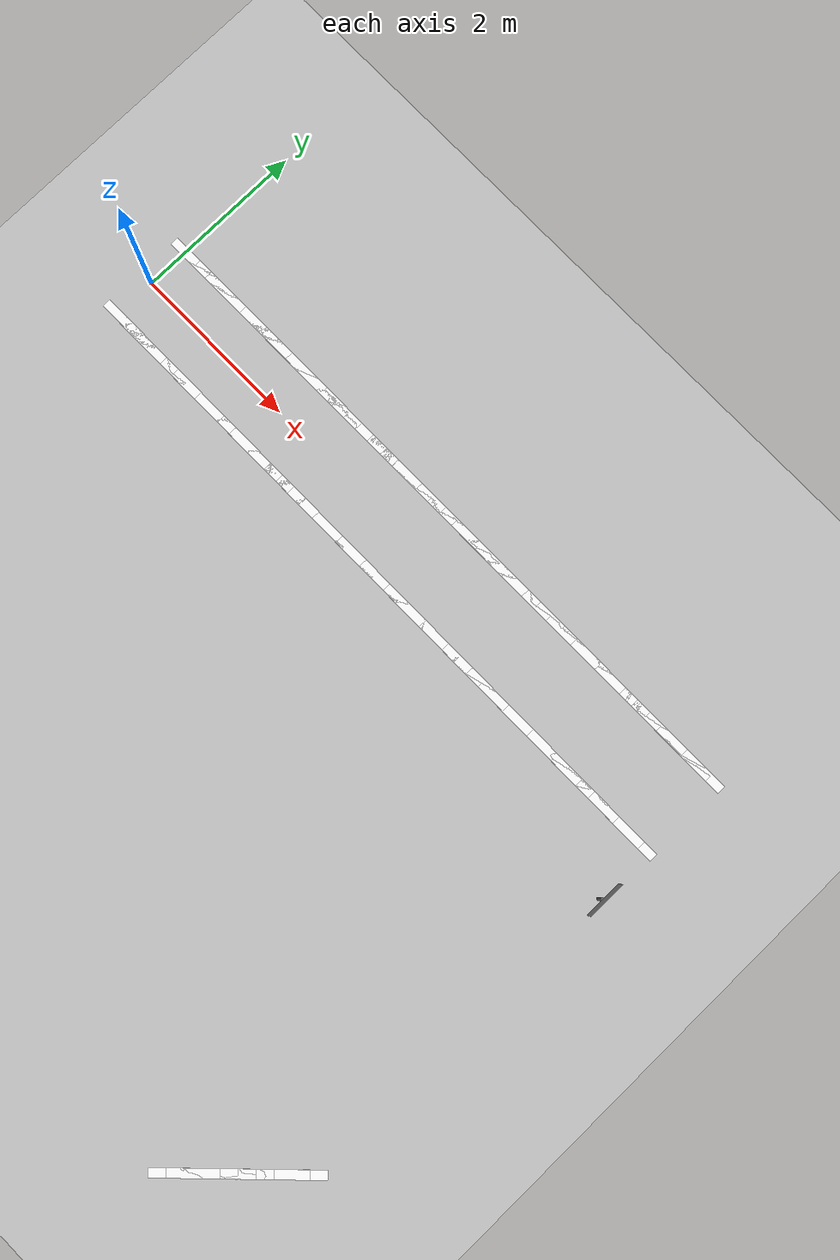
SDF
<sdf version="1.7">
 <world name="cone_lane">
  <model name="ground_plane">
   <static>true</static>
   <link name="link">
    <collision name="collision">
     <geometry><plane><normal>0 0 1</normal><size>150 150</size></plane></geometry>
     <surface><friction><ode><mu>1.0</mu></ode></friction></surface>
    </collision>
   </link>
  </model>
  <include><name>ground_asphalt</name><uri>model://ground_asphalt</uri></include>
  <model name="line_L001">
   <static>true</static>
   <pose>0.000 0.500 0.0030 0 0 0.0000</pose>
   <link name="link">
    <visual name="v">
     <geometry><box><size>0.360 0.100 0.005</size></box></geometry>
     <material>
      <ambient>0.85 0.85 0.85 1</ambient>
      <diffuse>0.95 0.95 0.95 1</diffuse>
      <specular>0.1 0.1 0.1 1</specular>
      <emissive>0.7 0.7 0.7 1</emissive>
     </material>
    </visual>
   </link>
  </model>
  <model name="line_L002">
   <static>true</static>
   <pose>0.180 0.500 0.0030 0 0 0.0000</pose>
   <link name="link">
    <visual name="v">
     <geometry><box><size>0.360 0.100 0.005</size></box></geometry>
     <material>
      <ambient>0.85 0.85 0.85 1</ambient>
      <diffuse>0.95 0.95 0.95 1</diffuse>
      <specular>0.1 0.1 0.1 1</specular>
      <emissive>0.7 0.7 0.7 1</emissive>
     </material>
    </visual>
   </link>
  </model>
  <model name="line_L003">
   <static>true</static>
   <pose>0.360 0.500 0.0030 0 0 0.0000</pose>
   <link name="link">
    <visual name="v">
     <geometry><box><size>0.360 0.100 0.005</size></box></geometry>
     <material>
      <ambient>0.85 0.85 0.85 1</ambient>
      <diffuse>0.95 0.95 0.95 1</diffuse>
      <specular>0.1 0.1 0.1 1</specular>
      <emissive>0.7 0.7 0.7 1</emissive>
     </material>
    </visual>
   </link>
  </model>
  <model name="line_L004">
   <static>true</static>
   <pose>0.540 0.500 0.0030 0 0 0.0000</pose>
   <link name="link">
    <visual name="v">
     <geometry><box><size>0.360 0.100 0.005</size></box></geometry>
     <material>
      <ambient>0.85 0.85 0.85 1</ambient>
      <diffuse>0.95 0.95 0.95 1</diffuse>
      <specular>0.1 0.1 0.1 1</specular>
      <emissive>0.7 0.7 0.7 1</emissive>
     </material>
    </visual>
   </link>
  </model>
  <model name="line_L005">
   <static>true</static>
   <pose>0.720 0.500 0.0030 0 0 0.0000</pose>
   <link name="link">
    <visual name="v">
     <geometry><box><size>0.360 0.100 0.005</size></box></geometry>
     <material>
      <ambient>0.85 0.85 0.85 1</ambient>
      <diffuse>0.95 0.95 0.95 1</diffuse>
      <specular>0.1 0.1 0.1 1</specular>
      <emissive>0.7 0.7 0.7 1</emissive>
     </material>
    </visual>
   </link>
  </model>
  <model name="line_L006">
   <static>true</static>
   <pose>0.900 0.500 0.0030 0 0 0.0000</pose>
   <link name="link">
    <visual name="v">
     <geometry><box><size>0.360 0.100 0.005</size></box></geometry>
     <material>
      <ambient>0.85 0.85 0.85 1</ambient>
      <diffuse>0.95 0.95 0.95 1</diffuse>
      <specular>0.1 0.1 0.1 1</specular>
      <emissive>0.7 0.7 0.7 1</emissive>
     </material>
    </visual>
   </link>
  </model>
  <model name="line_L007">
   <static>true</static>
   <pose>1.080 0.500 0.0030 0 0 0.0000</pose>
   <link name="link">
    <visual name="v">
     <geometry><box><size>0.360 0.100 0.005</size></box></geometry>
     <material>
      <ambient>0.85 0.85 0.85 1</ambient>
      <diffuse>0.95 0.95 0.95 1</diffuse>
      <specular>0.1 0.1 0.1 1</specular>
      <emissive>0.7 0.7 0.7 1</emissive>
     </material>
    </visual>
   </link>
  </model>
  <model name="line_L008">
   <static>true</static>
   <pose>1.260 0.500 0.0030 0 0 0.0000</pose>
   <link name="link">
    <visual name="v">
     <geometry><box><size>0.360 0.100 0.005</size></box></geometry>
     <material>
      <ambient>0.85 0.85 0.85 1</ambient>
      <diffuse>0.95 0.95 0.95 1</diffuse>
      <specular>0.1 0.1 0.1 1</specular>
      <emissive>0.7 0.7 0.7 1</emissive>
     </material>
    </visual>
   </link>
  </model>
  <model name="line_L009">
   <static>true</static>
   <pose>1.440 0.500 0.0030 0 0 0.0000</pose>
   <link name="link">
    <visual name="v">
     <geometry><box><size>0.360 0.100 0.005</size></box></geometry>
     <material>
      <ambient>0.85 0.85 0.85 1</ambient>
      <diffuse>0.95 0.95 0.95 1</diffuse>
      <specular>0.1 0.1 0.1 1</specular>
      <emissive>0.7 0.7 0.7 1</emissive>
     </material>
    </visual>
   </link>
  </model>
  <model name="line_L010">
   <static>true</static>
   <pose>1.620 0.500 0.0030 0 0 0.0000</pose>
   <link name="link">
    <visual name="v">
     <geometry><box><size>0.360 0.100 0.005</size></box></geometry>
     <material>
      <ambient>0.85 0.85 0.85 1</ambient>
      <diffuse>0.95 0.95 0.95 1</diffuse>
      <specular>0.1 0.1 0.1 1</specular>
      <emissive>0.7 0.7 0.7 1</emissive>
     </material>
    </visual>
   </link>
  </model>
  <model name="line_L011">
   <static>true</static>
   <pose>1.800 0.500 0.0030 0 0 0.0000</pose>
   <link name="link">
    <visual name="v">
     <geometry><box><size>0.360 0.100 0.005</size></box></geometry>
     <material>
      <ambient>0.85 0.85 0.85 1</ambient>
      <diffuse>0.95 0.95 0.95 1</diffuse>
      <specular>0.1 0.1 0.1 1</specular>
      <emissive>0.7 0.7 0.7 1</emissive>
     </material>
    </visual>
   </link>
  </model>
  <model name="line_L012">
   <static>true</static>
   <pose>1.980 0.500 0.0030 0 0 0.0000</pose>
   <link name="link">
    <visual name="v">
     <geometry><box><size>0.360 0.100 0.005</size></box></geometry>
     <material>
      <ambient>0.85 0.85 0.85 1</ambient>
      <diffuse>0.95 0.95 0.95 1</diffuse>
      <specular>0.1 0.1 0.1 1</specular>
      <emissive>0.7 0.7 0.7 1</emissive>
     </material>
    </visual>
   </link>
  </model>
  <model name="line_L013">
   <static>true</static>
   <pose>2.160 0.500 0.0030 0 0 0.0000</pose>
   <link name="link">
    <visual name="v">
     <geometry><box><size>0.360 0.100 0.005</size></box></geometry>
     <material>
      <ambient>0.85 0.85 0.85 1</ambient>
      <diffuse>0.95 0.95 0.95 1</diffuse>
      <specular>0.1 0.1 0.1 1</specular>
      <emissive>0.7 0.7 0.7 1</emissive>
     </material>
    </visual>
   </link>
  </model>
  <model name="line_L014">
   <static>true</static>
   <pose>2.340 0.500 0.0030 0 0 0.0000</pose>
   <link name="link">
    <visual name="v">
     <geometry><box><size>0.360 0.100 0.005</size></box></geometry>
     <material>
      <ambient>0.85 0.85 0.85 1</ambient>
      <diffuse>0.95 0.95 0.95 1</diffuse>
      <specular>0.1 0.1 0.1 1</specular>
      <emissive>0.7 0.7 0.7 1</emissive>
     </material>
    </visual>
   </link>
  </model>
  <model name="line_L015">
   <static>true</static>
   <pose>2.520 0.500 0.0030 0 0 0.0000</pose>
   <link name="link">
    <visual name="v">
     <geometry><box><size>0.360 0.100 0.005</size></box></geometry>
     <material>
      <ambient>0.85 0.85 0.85 1</ambient>
      <diffuse>0.95 0.95 0.95 1</diffuse>
      <specular>0.1 0.1 0.1 1</specular>
      <emissive>0.7 0.7 0.7 1</emissive>
     </material>
    </visual>
   </link>
  </model>
  <model name="line_L016">
   <static>true</static>
   <pose>2.700 0.500 0.0030 0 0 0.0000</pose>
   <link name="link">
    <visual name="v">
     <geometry><box><size>0.360 0.100 0.005</size></box></geometry>
     <material>
      <ambient>0.85 0.85 0.85 1</ambient>
      <diffuse>0.95 0.95 0.95 1</diffuse>
      <specular>0.1 0.1 0.1 1</specular>
      <emissive>0.7 0.7 0.7 1</emissive>
     </material>
    </visual>
   </link>
  </model>
  <model name="line_L017">
   <static>true</static>
   <pose>2.900 0.500 0.0030 0 0 0.0000</pose>
   <link name="link">
    <visual name="v">
     <geometry><box><size>0.360 0.100 0.005</size></box></geometry>
     <material>
      <ambient>0.85 0.85 0.85 1</ambient>
      <diffuse>0.95 0.95 0.95 1</diffuse>
      <specular>0.1 0.1 0.1 1</specular>
      <emissive>0.7 0.7 0.7 1</emissive>
     </material>
    </visual>
   </link>
  </model>
  <model name="line_L018">
   <static>true</static>
   <pose>3.080 0.500 0.0030 0 0 0.0000</pose>
   <link name="link">
    <visual name="v">
     <geometry><box><size>0.360 0.100 0.005</size></box></geometry>
     <material>
      <ambient>0.85 0.85 0.85 1</ambient>
      <diffuse>0.95 0.95 0.95 1</diffuse>
      <specular>0.1 0.1 0.1 1</specular>
      <emissive>0.7 0.7 0.7 1</emissive>
     </material>
    </visual>
   </link>
  </model>
  <model name="line_L019">
   <static>true</static>
   <pose>3.260 0.500 0.0030 0 0 0.0000</pose>
   <link name="link">
    <visual name="v">
     <geometry><box><size>0.360 0.100 0.005</size></box></geometry>
     <material>
      <ambient>0.85 0.85 0.85 1</ambient>
      <diffuse>0.95 0.95 0.95 1</diffuse>
      <specular>0.1 0.1 0.1 1</specular>
      <emissive>0.7 0.7 0.7 1</emissive>
     </material>
    </visual>
   </link>
  </model>
  <model name="line_L020">
   <static>true</static>
   <pose>3.440 0.500 0.0030 0 0 0.0000</pose>
   <link name="link">
    <visual name="v">
     <geometry><box><size>0.360 0.100 0.005</size></box></geometry>
     <material>
      <ambient>0.85 0.85 0.85 1</ambient>
      <diffuse>0.95 0.95 0.95 1</diffuse>
      <specular>0.1 0.1 0.1 1</specular>
      <emissive>0.7 0.7 0.7 1</emissive>
     </material>
    </visual>
   </link>
  </model>
  <model name="line_L021">
   <static>true</static>
   <pose>3.620 0.500 0.0030 0 0 0.0000</pose>
   <link name="link">
    <visual name="v">
     <geometry><box><size>0.360 0.100 0.005</size></box></geometry>
     <material>
      <ambient>0.85 0.85 0.85 1</ambient>
      <diffuse>0.95 0.95 0.95 1</diffuse>
      <specular>0.1 0.1 0.1 1</specular>
      <emissive>0.7 0.7 0.7 1</emissive>
     </material>
    </visual>
   </link>
  </model>
  <model name="line_L022">
   <static>true</static>
   <pose>3.800 0.500 0.0030 0 0 0.0000</pose>
   <link name="link">
    <visual name="v">
     <geometry><box><size>0.360 0.100 0.005</size></box></geometry>
     <material>
      <ambient>0.85 0.85 0.85 1</ambient>
      <diffuse>0.95 0.95 0.95 1</diffuse>
      <specular>0.1 0.1 0.1 1</specular>
      <emissive>0.7 0.7 0.7 1</emissive>
     </material>
    </visual>
   </link>
  </model>
  <model name="line_L023">
   <static>true</static>
   <pose>3.980 0.500 0.0030 0 0 0.0000</pose>
   <link name="link">
    <visual name="v">
     <geometry><box><size>0.360 0.100 0.005</size></box></geometry>
     <material>
      <ambient>0.85 0.85 0.85 1</ambient>
      <diffuse>0.95 0.95 0.95 1</diffuse>
      <specular>0.1 0.1 0.1 1</specular>
      <emissive>0.7 0.7 0.7 1</emissive>
     </material>
    </visual>
   </link>
  </model>
  <model name="line_L024">
   <static>true</static>
   <pose>4.160 0.500 0.0030 0 0 0.0000</pose>
   <link name="link">
    <visual name="v">
     <geometry><box><size>0.360 0.100 0.005</size></box></geometry>
     <material>
      <ambient>0.85 0.85 0.85 1</ambient>
      <diffuse>0.95 0.95 0.95 1</diffuse>
      <specular>0.1 0.1 0.1 1</specular>
      <emissive>0.7 0.7 0.7 1</emissive>
     </material>
    </visual>
   </link>
  </model>
  <model name="line_L025">
   <static>true</static>
   <pose>4.340 0.500 0.0030 0 0 0.0000</pose>
   <link name="link">
    <visual name="v">
     <geometry><box><size>0.360 0.100 0.005</size></box></geometry>
     <material>
      <ambient>0.85 0.85 0.85 1</ambient>
      <diffuse>0.95 0.95 0.95 1</diffuse>
      <specular>0.1 0.1 0.1 1</specular>
      <emissive>0.7 0.7 0.7 1</emissive>
     </material>
    </visual>
   </link>
  </model>
  <model name="line_L026">
   <static>true</static>
   <pose>4.520 0.500 0.0030 0 0 0.0000</pose>
   <link name="link">
    <visual name="v">
     <geometry><box><size>0.360 0.100 0.005</size></box></geometry>
     <material>
      <ambient>0.85 0.85 0.85 1</ambient>
      <diffuse>0.95 0.95 0.95 1</diffuse>
      <specular>0.1 0.1 0.1 1</specular>
      <emissive>0.7 0.7 0.7 1</emissive>
     </material>
    </visual>
   </link>
  </model>
  <model name="line_L027">
   <static>true</static>
   <pose>4.700 0.500 0.0030 0 0 0.0000</pose>
   <link name="link">
    <visual name="v">
     <geometry><box><size>0.360 0.100 0.005</size></box></geometry>
     <material>
      <ambient>0.85 0.85 0.85 1</ambient>
      <diffuse>0.95 0.95 0.95 1</diffuse>
      <specular>0.1 0.1 0.1 1</specular>
      <emissive>0.7 0.7 0.7 1</emissive>
     </material>
    </visual>
   </link>
  </model>
  <model name="line_L028">
   <static>true</static>
   <pose>4.860 0.500 0.0030 0 0 0.0000</pose>
   <link name="link">
    <visual name="v">
     <geometry><box><size>0.360 0.100 0.005</size></box></geometry>
     <material>
      <ambient>0.85 0.85 0.85 1</ambient>
      <diffuse>0.95 0.95 0.95 1</diffuse>
      <specular>0.1 0.1 0.1 1</specular>
      <emissive>0.7 0.7 0.7 1</emissive>
     </material>
    </visual>
   </link>
  </model>
  <model name="line_L029">
   <static>true</static>
   <pose>5.040 0.500 0.0030 0 0 0.0000</pose>
   <link name="link">
    <visual name="v">
     <geometry><box><size>0.360 0.100 0.005</size></box></geometry>
     <material>
      <ambient>0.85 0.85 0.85 1</ambient>
      <diffuse>0.95 0.95 0.95 1</diffuse>
      <specular>0.1 0.1 0.1 1</specular>
      <emissive>0.7 0.7 0.7 1</emissive>
     </material>
    </visual>
   </link>
  </model>
  <model name="line_L030">
   <static>true</static>
   <pose>5.220 0.500 0.0030 0 0 0.0000</pose>
   <link name="link">
    <visual name="v">
     <geometry><box><size>0.360 0.100 0.005</size></box></geometry>
     <material>
      <ambient>0.85 0.85 0.85 1</ambient>
      <diffuse>0.95 0.95 0.95 1</diffuse>
      <specular>0.1 0.1 0.1 1</specular>
      <emissive>0.7 0.7 0.7 1</emissive>
     </material>
    </visual>
   </link>
  </model>
  <model name="line_L031">
   <static>true</static>
   <pose>5.400 0.500 0.0030 0 0 0.0000</pose>
   <link name="link">
    <visual name="v">
     <geometry><box><size>0.360 0.100 0.005</size></box></geometry>
     <material>
      <ambient>0.85 0.85 0.85 1</ambient>
      <diffuse>0.95 0.95 0.95 1</diffuse>
      <specular>0.1 0.1 0.1 1</specular>
      <emissive>0.7 0.7 0.7 1</emissive>
     </material>
    </visual>
   </link>
  </model>
  <model name="line_L032">
   <static>true</static>
   <pose>5.580 0.500 0.0030 0 0 0.0000</pose>
   <link name="link">
    <visual name="v">
     <geometry><box><size>0.360 0.100 0.005</size></box></geometry>
     <material>
      <ambient>0.85 0.85 0.85 1</ambient>
      <diffuse>0.95 0.95 0.95 1</diffuse>
      <specular>0.1 0.1 0.1 1</specular>
      <emissive>0.7 0.7 0.7 1</emissive>
     </material>
    </visual>
   </link>
  </model>
  <model name="line_L033">
   <static>true</static>
   <pose>5.760 0.500 0.0030 0 0 0.0000</pose>
   <link name="link">
    <visual name="v">
     <geometry><box><size>0.360 0.100 0.005</size></box></geometry>
     <material>
      <ambient>0.85 0.85 0.85 1</ambient>
      <diffuse>0.95 0.95 0.95 1</diffuse>
      <specular>0.1 0.1 0.1 1</specular>
      <emissive>0.7 0.7 0.7 1</emissive>
     </material>
    </visual>
   </link>
  </model>
  <model name="line_L034">
   <static>true</static>
   <pose>5.940 0.500 0.0030 0 0 0.0000</pose>
   <link name="link">
    <visual name="v">
     <geometry><box><size>0.360 0.100 0.005</size></box></geometry>
     <material>
      <ambient>0.85 0.85 0.85 1</ambient>
      <diffuse>0.95 0.95 0.95 1</diffuse>
      <specular>0.1 0.1 0.1 1</specular>
      <emissive>0.7 0.7 0.7 1</emissive>
     </material>
    </visual>
   </link>
  </model>
  <model name="line_L035">
   <static>true</static>
   <pose>6.120 0.500 0.0030 0 0 0.0000</pose>
   <link name="link">
    <visual name="v">
     <geometry><box><size>0.360 0.100 0.005</size></box></geometry>
     <material>
      <ambient>0.85 0.85 0.85 1</ambient>
      <diffuse>0.95 0.95 0.95 1</diffuse>
      <specular>0.1 0.1 0.1 1</specular>
      <emissive>0.7 0.7 0.7 1</emissive>
     </material>
    </visual>
   </link>
  </model>
  <model name="line_L036">
   <static>true</static>
   <pose>6.300 0.500 0.0030 0 0 0.0000</pose>
   <link name="link">
    <visual name="v">
     <geometry><box><size>0.360 0.100 0.005</size></box></geometry>
     <material>
      <ambient>0.85 0.85 0.85 1</ambient>
      <diffuse>0.95 0.95 0.95 1</diffuse>
      <specular>0.1 0.1 0.1 1</specular>
      <emissive>0.7 0.7 0.7 1</emissive>
     </material>
    </visual>
   </link>
  </model>
  <model name="line_L037">
   <static>true</static>
   <pose>6.480 0.500 0.0030 0 0 0.0000</pose>
   <link name="link">
    <visual name="v">
     <geometry><box><size>0.360 0.100 0.005</size></box></geometry>
     <material>
      <ambient>0.85 0.85 0.85 1</ambient>
      <diffuse>0.95 0.95 0.95 1</diffuse>
      <specular>0.1 0.1 0.1 1</specular>
      <emissive>0.7 0.7 0.7 1</emissive>
     </material>
    </visual>
   </link>
  </model>
  <model name="line_L038">
   <static>true</static>
   <pose>6.660 0.500 0.0030 0 0 0.0000</pose>
   <link name="link">
    <visual name="v">
     <geometry><box><size>0.360 0.100 0.005</size></box></geometry>
     <material>
      <ambient>0.85 0.85 0.85 1</ambient>
      <diffuse>0.95 0.95 0.95 1</diffuse>
      <specular>0.1 0.1 0.1 1</specular>
      <emissive>0.7 0.7 0.7 1</emissive>
     </material>
    </visual>
   </link>
  </model>
  <model name="line_L039">
   <static>true</static>
   <pose>6.840 0.500 0.0030 0 0 0.0000</pose>
   <link name="link">
    <visual name="v">
     <geometry><box><size>0.360 0.100 0.005</size></box></geometry>
     <material>
      <ambient>0.85 0.85 0.85 1</ambient>
      <diffuse>0.95 0.95 0.95 1</diffuse>
      <specular>0.1 0.1 0.1 1</specular>
      <emissive>0.7 0.7 0.7 1</emissive>
     </material>
    </visual>
   </link>
  </model>
  <model name="line_L040">
   <static>true</static>
   <pose>7.020 0.500 0.0030 0 0 0.0000</pose>
   <link name="link">
    <visual name="v">
     <geometry><box><size>0.360 0.100 0.005</size></box></geometry>
     <material>
      <ambient>0.85 0.85 0.85 1</ambient>
      <diffuse>0.95 0.95 0.95 1</diffuse>
      <specular>0.1 0.1 0.1 1</specular>
      <emissive>0.7 0.7 0.7 1</emissive>
     </material>
    </visual>
   </link>
  </model>
  <model name="line_L041">
   <static>true</static>
   <pose>7.200 0.500 0.0030 0 0 0.0000</pose>
   <link name="link">
    <visual name="v">
     <geometry><box><size>0.360 0.100 0.005</size></box></geometry>
     <material>
      <ambient>0.85 0.85 0.85 1</ambient>
      <diffuse>0.95 0.95 0.95 1</diffuse>
      <specular>0.1 0.1 0.1 1</specular>
      <emissive>0.7 0.7 0.7 1</emissive>
     </material>
    </visual>
   </link>
  </model>
  <model name="line_L042">
   <static>true</static>
   <pose>7.380 0.500 0.0030 0 0 0.0000</pose>
   <link name="link">
    <visual name="v">
     <geometry><box><size>0.360 0.100 0.005</size></box></geometry>
     <material>
      <ambient>0.85 0.85 0.85 1</ambient>
      <diffuse>0.95 0.95 0.95 1</diffuse>
      <specular>0.1 0.1 0.1 1</specular>
      <emissive>0.7 0.7 0.7 1</emissive>
     </material>
    </visual>
   </link>
  </model>
  <model name="line_L043">
   <static>true</static>
   <pose>7.560 0.500 0.0030 0 0 0.0000</pose>
   <link name="link">
    <visual name="v">
     <geometry><box><size>0.360 0.100 0.005</size></box></geometry>
     <material>
      <ambient>0.85 0.85 0.85 1</ambient>
      <diffuse>0.95 0.95 0.95 1</diffuse>
      <specular>0.1 0.1 0.1 1</specular>
      <emissive>0.7 0.7 0.7 1</emissive>
     </material>
    </visual>
   </link>
  </model>
  <model name="line_L044">
   <static>true</static>
   <pose>7.740 0.500 0.0030 0 0 0.0000</pose>
   <link name="link">
    <visual name="v">
     <geometry><box><size>0.360 0.100 0.005</size></box></geometry>
     <material>
      <ambient>0.85 0.85 0.85 1</ambient>
      <diffuse>0.95 0.95 0.95 1</diffuse>
      <specular>0.1 0.1 0.1 1</specular>
      <emissive>0.7 0.7 0.7 1</emissive>
     </material>
    </visual>
   </link>
  </model>
  <model name="line_L045">
   <static>true</static>
   <pose>7.920 0.500 0.0030 0 0 0.0000</pose>
   <link name="link">
    <visual name="v">
     <geometry><box><size>0.360 0.100 0.005</size></box></geometry>
     <material>
      <ambient>0.85 0.85 0.85 1</ambient>
      <diffuse>0.95 0.95 0.95 1</diffuse>
      <specular>0.1 0.1 0.1 1</specular>
      <emissive>0.7 0.7 0.7 1</emissive>
     </material>
    </visual>
   </link>
  </model>
  <model name="line_R001">
   <static>true</static>
   <pose>0.000 -0.500 0.0030 0 0 0.0000</pose>
   <link name="link">
    <visual name="v">
     <geometry><box><size>0.360 0.100 0.005</size></box></geometry>
     <material>
      <ambient>0.85 0.85 0.85 1</ambient>
      <diffuse>0.95 0.95 0.95 1</diffuse>
      <specular>0.1 0.1 0.1 1</specular>
      <emissive>0.7 0.7 0.7 1</emissive>
     </material>
    </visual>
   </link>
  </model>
  <model name="line_R002">
   <static>true</static>
   <pose>0.180 -0.500 0.0030 0 0 0.0000</pose>
   <link name="link">
    <visual name="v">
     <geometry><box><size>0.360 0.100 0.005</size></box></geometry>
     <material>
      <ambient>0.85 0.85 0.85 1</ambient>
      <diffuse>0.95 0.95 0.95 1</diffuse>
      <specular>0.1 0.1 0.1 1</specular>
      <emissive>0.7 0.7 0.7 1</emissive>
     </material>
    </visual>
   </link>
  </model>
  <model name="line_R003">
   <static>true</static>
   <pose>0.360 -0.500 0.0030 0 0 0.0000</pose>
   <link name="link">
    <visual name="v">
     <geometry><box><size>0.360 0.100 0.005</size></box></geometry>
     <material>
      <ambient>0.85 0.85 0.85 1</ambient>
      <diffuse>0.95 0.95 0.95 1</diffuse>
      <specular>0.1 0.1 0.1 1</specular>
      <emissive>0.7 0.7 0.7 1</emissive>
     </material>
    </visual>
   </link>
  </model>
  <model name="line_R004">
   <static>true</static>
   <pose>0.540 -0.500 0.0030 0 0 0.0000</pose>
   <link name="link">
    <visual name="v">
     <geometry><box><size>0.360 0.100 0.005</size></box></geometry>
     <material>
      <ambient>0.85 0.85 0.85 1</ambient>
      <diffuse>0.95 0.95 0.95 1</diffuse>
      <specular>0.1 0.1 0.1 1</specular>
      <emissive>0.7 0.7 0.7 1</emissive>
     </material>
    </visual>
   </link>
  </model>
  <model name="line_R005">
   <static>true</static>
   <pose>0.720 -0.500 0.0030 0 0 0.0000</pose>
   <link name="link">
    <visual name="v">
     <geometry><box><size>0.360 0.100 0.005</size></box></geometry>
     <material>
      <ambient>0.85 0.85 0.85 1</ambient>
      <diffuse>0.95 0.95 0.95 1</diffuse>
      <specular>0.1 0.1 0.1 1</specular>
      <emissive>0.7 0.7 0.7 1</emissive>
     </material>
    </visual>
   </link>
  </model>
  <model name="line_R006">
   <static>true</static>
   <pose>0.900 -0.500 0.0030 0 0 0.0000</pose>
   <link name="link">
    <visual name="v">
     <geometry><box><size>0.360 0.100 0.005</size></box></geometry>
     <material>
      <ambient>0.85 0.85 0.85 1</ambient>
      <diffuse>0.95 0.95 0.95 1</diffuse>
      <specular>0.1 0.1 0.1 1</specular>
      <emissive>0.7 0.7 0.7 1</emissive>
     </material>
    </visual>
   </link>
  </model>
  <model name="line_R007">
   <static>true</static>
   <pose>1.080 -0.500 0.0030 0 0 0.0000</pose>
   <link name="link">
    <visual name="v">
     <geometry><box><size>0.360 0.100 0.005</size></box></geometry>
     <material>
      <ambient>0.85 0.85 0.85 1</ambient>
      <diffuse>0.95 0.95 0.95 1</diffuse>
      <specular>0.1 0.1 0.1 1</specular>
      <emissive>0.7 0.7 0.7 1</emissive>
     </material>
    </visual>
   </link>
  </model>
  <model name="line_R008">
   <static>true</static>
   <pose>1.260 -0.500 0.0030 0 0 0.0000</pose>
   <link name="link">
    <visual name="v">
     <geometry><box><size>0.360 0.100 0.005</size></box></geometry>
     <material>
      <ambient>0.85 0.85 0.85 1</ambient>
      <diffuse>0.95 0.95 0.95 1</diffuse>
      <specular>0.1 0.1 0.1 1</specular>
      <emissive>0.7 0.7 0.7 1</emissive>
     </material>
    </visual>
   </link>
  </model>
  <model name="line_R009">
   <static>true</static>
   <pose>1.440 -0.500 0.0030 0 0 0.0000</pose>
   <link name="link">
    <visual name="v">
     <geometry><box><size>0.360 0.100 0.005</size></box></geometry>
     <material>
      <ambient>0.85 0.85 0.85 1</ambient>
      <diffuse>0.95 0.95 0.95 1</diffuse>
      <specular>0.1 0.1 0.1 1</specular>
      <emissive>0.7 0.7 0.7 1</emissive>
     </material>
    </visual>
   </link>
  </model>
  <model name="line_R010">
   <static>true</static>
   <pose>1.620 -0.500 0.0030 0 0 0.0000</pose>
   <link name="link">
    <visual name="v">
     <geometry><box><size>0.360 0.100 0.005</size></box></geometry>
     <material>
      <ambient>0.85 0.85 0.85 1</ambient>
      <diffuse>0.95 0.95 0.95 1</diffuse>
      <specular>0.1 0.1 0.1 1</specular>
      <emissive>0.7 0.7 0.7 1</emissive>
     </material>
    </visual>
   </link>
  </model>
  <model name="line_R011">
   <static>true</static>
   <pose>1.800 -0.500 0.0030 0 0 0.0000</pose>
   <link name="link">
    <visual name="v">
     <geometry><box><size>0.360 0.100 0.005</size></box></geometry>
     <material>
      <ambient>0.85 0.85 0.85 1</ambient>
      <diffuse>0.95 0.95 0.95 1</diffuse>
      <specular>0.1 0.1 0.1 1</specular>
      <emissive>0.7 0.7 0.7 1</emissive>
     </material>
    </visual>
   </link>
  </model>
  <model name="line_R012">
   <static>true</static>
   <pose>1.980 -0.500 0.0030 0 0 0.0000</pose>
   <link name="link">
    <visual name="v">
     <geometry><box><size>0.360 0.100 0.005</size></box></geometry>
     <material>
      <ambient>0.85 0.85 0.85 1</ambient>
      <diffuse>0.95 0.95 0.95 1</diffuse>
      <specular>0.1 0.1 0.1 1</specular>
      <emissive>0.7 0.7 0.7 1</emissive>
     </material>
    </visual>
   </link>
  </model>
  <model name="line_R013">
   <static>true</static>
   <pose>2.160 -0.500 0.0030 0 0 0.0000</pose>
   <link name="link">
    <visual name="v">
     <geometry><box><size>0.360 0.100 0.005</size></box></geometry>
     <material>
      <ambient>0.85 0.85 0.85 1</ambient>
      <diffuse>0.95 0.95 0.95 1</diffuse>
      <specular>0.1 0.1 0.1 1</specular>
      <emissive>0.7 0.7 0.7 1</emissive>
     </material>
    </visual>
   </link>
  </model>
  <model name="line_R014">
   <static>true</static>
   <pose>2.340 -0.500 0.0030 0 0 0.0000</pose>
   <link name="link">
    <visual name="v">
     <geometry><box><size>0.360 0.100 0.005</size></box></geometry>
     <material>
      <ambient>0.85 0.85 0.85 1</ambient>
      <diffuse>0.95 0.95 0.95 1</diffuse>
      <specular>0.1 0.1 0.1 1</specular>
      <emissive>0.7 0.7 0.7 1</emissive>
     </material>
    </visual>
   </link>
  </model>
  <model name="line_R015">
   <static>true</static>
   <pose>2.520 -0.500 0.0030 0 0 0.0000</pose>
   <link name="link">
    <visual name="v">
     <geometry><box><size>0.360 0.100 0.005</size></box></geometry>
     <material>
      <ambient>0.85 0.85 0.85 1</ambient>
      <diffuse>0.95 0.95 0.95 1</diffuse>
      <specular>0.1 0.1 0.1 1</specular>
      <emissive>0.7 0.7 0.7 1</emissive>
     </material>
    </visual>
   </link>
  </model>
  <model name="line_R016">
   <static>true</static>
   <pose>2.700 -0.500 0.0030 0 0 0.0000</pose>
   <link name="link">
    <visual name="v">
     <geometry><box><size>0.360 0.100 0.005</size></box></geometry>
     <material>
      <ambient>0.85 0.85 0.85 1</ambient>
      <diffuse>0.95 0.95 0.95 1</diffuse>
      <specular>0.1 0.1 0.1 1</specular>
      <emissive>0.7 0.7 0.7 1</emissive>
     </material>
    </visual>
   </link>
  </model>
  <model name="line_R017">
   <static>true</static>
   <pose>2.900 -0.500 0.0030 0 0 0.0000</pose>
   <link name="link">
    <visual name="v">
     <geometry><box><size>0.360 0.100 0.005</size></box></geometry>
     <material>
      <ambient>0.85 0.85 0.85 1</ambient>
      <diffuse>0.95 0.95 0.95 1</diffuse>
      <specular>0.1 0.1 0.1 1</specular>
      <emissive>0.7 0.7 0.7 1</emissive>
     </material>
    </visual>
   </link>
  </model>
  <model name="line_R018">
   <static>true</static>
   <pose>3.080 -0.500 0.0030 0 0 0.0000</pose>
   <link name="link">
    <visual name="v">
     <geometry><box><size>0.360 0.100 0.005</size></box></geometry>
     <material>
      <ambient>0.85 0.85 0.85 1</ambient>
      <diffuse>0.95 0.95 0.95 1</diffuse>
      <specular>0.1 0.1 0.1 1</specular>
      <emissive>0.7 0.7 0.7 1</emissive>
     </material>
    </visual>
   </link>
  </model>
  <model name="line_R019">
   <static>true</static>
   <pose>3.260 -0.500 0.0030 0 0 0.0000</pose>
   <link name="link">
    <visual name="v">
     <geometry><box><size>0.360 0.100 0.005</size></box></geometry>
     <material>
      <ambient>0.85 0.85 0.85 1</ambient>
      <diffuse>0.95 0.95 0.95 1</diffuse>
      <specular>0.1 0.1 0.1 1</specular>
      <emissive>0.7 0.7 0.7 1</emissive>
     </material>
    </visual>
   </link>
  </model>
  <model name="line_R020">
   <static>true</static>
   <pose>3.440 -0.500 0.0030 0 0 0.0000</pose>
   <link name="link">
    <visual name="v">
     <geometry><box><size>0.360 0.100 0.005</size></box></geometry>
     <material>
      <ambient>0.85 0.85 0.85 1</ambient>
      <diffuse>0.95 0.95 0.95 1</diffuse>
      <specular>0.1 0.1 0.1 1</specular>
      <emissive>0.7 0.7 0.7 1</emissive>
     </material>
    </visual>
   </link>
  </model>
  <model name="line_R021">
   <static>true</static>
   <pose>3.620 -0.500 0.0030 0 0 0.0000</pose>
   <link name="link">
    <visual name="v">
     <geometry><box><size>0.360 0.100 0.005</size></box></geometry>
     <material>
      <ambient>0.85 0.85 0.85 1</ambient>
      <diffuse>0.95 0.95 0.95 1</diffuse>
      <specular>0.1 0.1 0.1 1</specular>
      <emissive>0.7 0.7 0.7 1</emissive>
     </material>
    </visual>
   </link>
  </model>
  <model name="line_R022">
   <static>true</static>
   <pose>3.800 -0.500 0.0030 0 0 0.0000</pose>
   <link name="link">
    <visual name="v">
     <geometry><box><size>0.360 0.100 0.005</size></box></geometry>
     <material>
      <ambient>0.85 0.85 0.85 1</ambient>
      <diffuse>0.95 0.95 0.95 1</diffuse>
      <specular>0.1 0.1 0.1 1</specular>
      <emissive>0.7 0.7 0.7 1</emissive>
     </material>
    </visual>
   </link>
  </model>
  <model name="line_R023">
   <static>true</static>
   <pose>3.980 -0.500 0.0030 0 0 0.0000</pose>
   <link name="link">
    <visual name="v">
     <geometry><box><size>0.360 0.100 0.005</size></box></geometry>
     <material>
      <ambient>0.85 0.85 0.85 1</ambient>
      <diffuse>0.95 0.95 0.95 1</diffuse>
      <specular>0.1 0.1 0.1 1</specular>
      <emissive>0.7 0.7 0.7 1</emissive>
     </material>
    </visual>
   </link>
  </model>
  <model name="line_R024">
   <static>true</static>
   <pose>4.160 -0.500 0.0030 0 0 0.0000</pose>
   <link name="link">
    <visual name="v">
     <geometry><box><size>0.360 0.100 0.005</size></box></geometry>
     <material>
      <ambient>0.85 0.85 0.85 1</ambient>
      <diffuse>0.95 0.95 0.95 1</diffuse>
      <specular>0.1 0.1 0.1 1</specular>
      <emissive>0.7 0.7 0.7 1</emissive>
     </material>
    </visual>
   </link>
  </model>
  <model name="line_R025">
   <static>true</static>
   <pose>4.340 -0.500 0.0030 0 0 0.0000</pose>
   <link name="link">
    <visual name="v">
     <geometry><box><size>0.360 0.100 0.005</size></box></geometry>
     <material>
      <ambient>0.85 0.85 0.85 1</ambient>
      <diffuse>0.95 0.95 0.95 1</diffuse>
      <specular>0.1 0.1 0.1 1</specular>
      <emissive>0.7 0.7 0.7 1</emissive>
     </material>
    </visual>
   </link>
  </model>
  <model name="line_R026">
   <static>true</static>
   <pose>4.520 -0.500 0.0030 0 0 0.0000</pose>
   <link name="link">
    <visual name="v">
     <geometry><box><size>0.360 0.100 0.005</size></box></geometry>
     <material>
      <ambient>0.85 0.85 0.85 1</ambient>
      <diffuse>0.95 0.95 0.95 1</diffuse>
      <specular>0.1 0.1 0.1 1</specular>
      <emissive>0.7 0.7 0.7 1</emissive>
     </material>
    </visual>
   </link>
  </model>
  <model name="line_R027">
   <static>true</static>
   <pose>4.700 -0.500 0.0030 0 0 0.0000</pose>
   <link name="link">
    <visual name="v">
     <geometry><box><size>0.360 0.100 0.005</size></box></geometry>
     <material>
      <ambient>0.85 0.85 0.85 1</ambient>
      <diffuse>0.95 0.95 0.95 1</diffuse>
      <specular>0.1 0.1 0.1 1</specular>
      <emissive>0.7 0.7 0.7 1</emissive>
     </material>
    </visual>
   </link>
  </model>
  <model name="line_R028">
   <static>true</static>
   <pose>4.860 -0.500 0.0030 0 0 0.0000</pose>
   <link name="link">
    <visual name="v">
     <geometry><box><size>0.360 0.100 0.005</size></box></geometry>
     <material>
      <ambient>0.85 0.85 0.85 1</ambient>
      <diffuse>0.95 0.95 0.95 1</diffuse>
      <specular>0.1 0.1 0.1 1</specular>
      <emissive>0.7 0.7 0.7 1</emissive>
     </material>
    </visual>
   </link>
  </model>
  <model name="line_R029">
   <static>true</static>
   <pose>5.040 -0.500 0.0030 0 0 0.0000</pose>
   <link name="link">
    <visual name="v">
     <geometry><box><size>0.360 0.100 0.005</size></box></geometry>
     <material>
      <ambient>0.85 0.85 0.85 1</ambient>
      <diffuse>0.95 0.95 0.95 1</diffuse>
      <specular>0.1 0.1 0.1 1</specular>
      <emissive>0.7 0.7 0.7 1</emissive>
     </material>
    </visual>
   </link>
  </model>
  <model name="line_R030">
   <static>true</static>
   <pose>5.220 -0.500 0.0030 0 0 0.0000</pose>
   <link name="link">
    <visual name="v">
     <geometry><box><size>0.360 0.100 0.005</size></box></geometry>
     <material>
      <ambient>0.85 0.85 0.85 1</ambient>
      <diffuse>0.95 0.95 0.95 1</diffuse>
      <specular>0.1 0.1 0.1 1</specular>
      <emissive>0.7 0.7 0.7 1</emissive>
     </material>
    </visual>
   </link>
  </model>
  <model name="line_R031">
   <static>true</static>
   <pose>5.400 -0.500 0.0030 0 0 0.0000</pose>
   <link name="link">
    <visual name="v">
     <geometry><box><size>0.360 0.100 0.005</size></box></geometry>
     <material>
      <ambient>0.85 0.85 0.85 1</ambient>
      <diffuse>0.95 0.95 0.95 1</diffuse>
      <specular>0.1 0.1 0.1 1</specular>
      <emissive>0.7 0.7 0.7 1</emissive>
     </material>
    </visual>
   </link>
  </model>
  <model name="line_R032">
   <static>true</static>
   <pose>5.580 -0.500 0.0030 0 0 0.0000</pose>
   <link name="link">
    <visual name="v">
     <geometry><box><size>0.360 0.100 0.005</size></box></geometry>
     <material>
      <ambient>0.85 0.85 0.85 1</ambient>
      <diffuse>0.95 0.95 0.95 1</diffuse>
      <specular>0.1 0.1 0.1 1</specular>
      <emissive>0.7 0.7 0.7 1</emissive>
     </material>
    </visual>
   </link>
  </model>
  <model name="line_R033">
   <static>true</static>
   <pose>5.760 -0.500 0.0030 0 0 0.0000</pose>
   <link name="link">
    <visual name="v">
     <geometry><box><size>0.360 0.100 0.005</size></box></geometry>
     <material>
      <ambient>0.85 0.85 0.85 1</ambient>
      <diffuse>0.95 0.95 0.95 1</diffuse>
      <specular>0.1 0.1 0.1 1</specular>
      <emissive>0.7 0.7 0.7 1</emissive>
     </material>
    </visual>
   </link>
  </model>
  <model name="line_R034">
   <static>true</static>
   <pose>5.940 -0.500 0.0030 0 0 0.0000</pose>
   <link name="link">
    <visual name="v">
     <geometry><box><size>0.360 0.100 0.005</size></box></geometry>
     <material>
      <ambient>0.85 0.85 0.85 1</ambient>
      <diffuse>0.95 0.95 0.95 1</diffuse>
      <specular>0.1 0.1 0.1 1</specular>
      <emissive>0.7 0.7 0.7 1</emissive>
     </material>
    </visual>
   </link>
  </model>
  <model name="line_R035">
   <static>true</static>
   <pose>6.120 -0.500 0.0030 0 0 0.0000</pose>
   <link name="link">
    <visual name="v">
     <geometry><box><size>0.360 0.100 0.005</size></box></geometry>
     <material>
      <ambient>0.85 0.85 0.85 1</ambient>
      <diffuse>0.95 0.95 0.95 1</diffuse>
      <specular>0.1 0.1 0.1 1</specular>
      <emissive>0.7 0.7 0.7 1</emissive>
     </material>
    </visual>
   </link>
  </model>
  <model name="line_R036">
   <static>true</static>
   <pose>6.300 -0.500 0.0030 0 0 0.0000</pose>
   <link name="link">
    <visual name="v">
     <geometry><box><size>0.360 0.100 0.005</size></box></geometry>
     <material>
      <ambient>0.85 0.85 0.85 1</ambient>
      <diffuse>0.95 0.95 0.95 1</diffuse>
      <specular>0.1 0.1 0.1 1</specular>
      <emissive>0.7 0.7 0.7 1</emissive>
     </material>
    </visual>
   </link>
  </model>
  <model name="line_R037">
   <static>true</static>
   <pose>6.480 -0.500 0.0030 0 0 0.0000</pose>
   <link name="link">
    <visual name="v">
     <geometry><box><size>0.360 0.100 0.005</size></box></geometry>
     <material>
      <ambient>0.85 0.85 0.85 1</ambient>
      <diffuse>0.95 0.95 0.95 1</diffuse>
      <specular>0.1 0.1 0.1 1</specular>
      <emissive>0.7 0.7 0.7 1</emissive>
     </material>
    </visual>
   </link>
  </model>
  <model name="line_R038">
   <static>true</static>
   <pose>6.660 -0.500 0.0030 0 0 0.0000</pose>
   <link name="link">
    <visual name="v">
     <geometry><box><size>0.360 0.100 0.005</size></box></geometry>
     <material>
      <ambient>0.85 0.85 0.85 1</ambient>
      <diffuse>0.95 0.95 0.95 1</diffuse>
      <specular>0.1 0.1 0.1 1</specular>
      <emissive>0.7 0.7 0.7 1</emissive>
     </material>
    </visual>
   </link>
  </model>
  <model name="line_R039">
   <static>true</static>
   <pose>6.840 -0.500 0.0030 0 0 0.0000</pose>
   <link name="link">
    <visual name="v">
     <geometry><box><size>0.360 0.100 0.005</size></box></geometry>
     <material>
      <ambient>0.85 0.85 0.85 1</ambient>
      <diffuse>0.95 0.95 0.95 1</diffuse>
      <specular>0.1 0.1 0.1 1</specular>
      <emissive>0.7 0.7 0.7 1</emissive>
     </material>
    </visual>
   </link>
  </model>
  <model name="line_R040">
   <static>true</static>
   <pose>7.020 -0.500 0.0030 0 0 0.0000</pose>
   <link name="link">
    <visual name="v">
     <geometry><box><size>0.360 0.100 0.005</size></box></geometry>
     <material>
      <ambient>0.85 0.85 0.85 1</ambient>
      <diffuse>0.95 0.95 0.95 1</diffuse>
      <specular>0.1 0.1 0.1 1</specular>
      <emissive>0.7 0.7 0.7 1</emissive>
     </material>
    </visual>
   </link>
  </model>
  <model name="line_R041">
   <static>true</static>
   <pose>7.200 -0.500 0.0030 0 0 0.0000</pose>
   <link name="link">
    <visual name="v">
     <geometry><box><size>0.360 0.100 0.005</size></box></geometry>
     <material>
      <ambient>0.85 0.85 0.85 1</ambient>
      <diffuse>0.95 0.95 0.95 1</diffuse>
      <specular>0.1 0.1 0.1 1</specular>
      <emissive>0.7 0.7 0.7 1</emissive>
     </material>
    </visual>
   </link>
  </model>
  <model name="line_R042">
   <static>true</static>
   <pose>7.380 -0.500 0.0030 0 0 0.0000</pose>
   <link name="link">
    <visual name="v">
     <geometry><box><size>0.360 0.100 0.005</size></box></geometry>
     <material>
      <ambient>0.85 0.85 0.85 1</ambient>
      <diffuse>0.95 0.95 0.95 1</diffuse>
      <specular>0.1 0.1 0.1 1</specular>
      <emissive>0.7 0.7 0.7 1</emissive>
     </material>
    </visual>
   </link>
  </model>
  <model name="line_R043">
   <static>true</static>
   <pose>7.560 -0.500 0.0030 0 0 0.0000</pose>
   <link name="link">
    <visual name="v">
     <geometry><box><size>0.360 0.100 0.005</size></box></geometry>
     <material>
      <ambient>0.85 0.85 0.85 1</ambient>
      <diffuse>0.95 0.95 0.95 1</diffuse>
      <specular>0.1 0.1 0.1 1</specular>
      <emissive>0.7 0.7 0.7 1</emissive>
     </material>
    </visual>
   </link>
  </model>
  <model name="line_R044">
   <static>true</static>
   <pose>7.740 -0.500 0.0030 0 0 0.0000</pose>
   <link name="link">
    <visual name="v">
     <geometry><box><size>0.360 0.100 0.005</size></box></geometry>
     <material>
      <ambient>0.85 0.85 0.85 1</ambient>
      <diffuse>0.95 0.95 0.95 1</diffuse>
      <specular>0.1 0.1 0.1 1</specular>
      <emissive>0.7 0.7 0.7 1</emissive>
     </material>
    </visual>
   </link>
  </model>
  <model name="line_R045">
   <static>true</static>
   <pose>7.920 -0.500 0.0030 0 0 0.0000</pose>
   <link name="link">
    <visual name="v">
     <geometry><box><size>0.360 0.100 0.005</size></box></geometry>
     <material>
      <ambient>0.85 0.85 0.85 1</ambient>
      <diffuse>0.95 0.95 0.95 1</diffuse>
      <specular>0.1 0.1 0.1 1</specular>
      <emissive>0.7 0.7 0.7 1</emissive>
     </material>
    </visual>
   </link>
  </model>
  <model name="line_R094">
   <static>true</static>
   <pose>7.911 -5.210 0.0030 0 0 -2.3562</pose>
   <link name="link">
    <visual name="v">
     <geometry><box><size>0.360 0.100 0.005</size></box></geometry>
     <material>
      <ambient>0.85 0.85 0.85 1</ambient>
      <diffuse>0.95 0.95 0.95 1</diffuse>
      <specular>0.1 0.1 0.1 1</specular>
      <emissive>0.7 0.7 0.7 1</emissive>
     </material>
    </visual>
   </link>
  </model>
  <model name="line_R095">
   <static>true</static>
   <pose>7.784 -5.338 0.0030 0 0 -2.3562</pose>
   <link name="link">
    <visual name="v">
     <geometry><box><size>0.360 0.100 0.005</size></box></geometry>
     <material>
      <ambient>0.85 0.85 0.85 1</ambient>
      <diffuse>0.95 0.95 0.95 1</diffuse>
      <specular>0.1 0.1 0.1 1</specular>
      <emissive>0.7 0.7 0.7 1</emissive>
     </material>
    </visual>
   </link>
  </model>
  <model name="line_R096">
   <static>true</static>
   <pose>7.656 -5.465 0.0030 0 0 -2.3562</pose>
   <link name="link">
    <visual name="v">
     <geometry><box><size>0.360 0.100 0.005</size></box></geometry>
     <material>
      <ambient>0.85 0.85 0.85 1</ambient>
      <diffuse>0.95 0.95 0.95 1</diffuse>
      <specular>0.1 0.1 0.1 1</specular>
      <emissive>0.7 0.7 0.7 1</emissive>
     </material>
    </visual>
   </link>
  </model>
  <model name="line_R097">
   <static>true</static>
   <pose>7.529 -5.592 0.0030 0 0 -2.3562</pose>
   <link name="link">
    <visual name="v">
     <geometry><box><size>0.360 0.100 0.005</size></box></geometry>
     <material>
      <ambient>0.85 0.85 0.85 1</ambient>
      <diffuse>0.95 0.95 0.95 1</diffuse>
      <specular>0.1 0.1 0.1 1</specular>
      <emissive>0.7 0.7 0.7 1</emissive>
     </material>
    </visual>
   </link>
  </model>
  <model name="line_R098">
   <static>true</static>
   <pose>7.402 -5.719 0.0030 0 0 -2.3562</pose>
   <link name="link">
    <visual name="v">
     <geometry><box><size>0.360 0.100 0.005</size></box></geometry>
     <material>
      <ambient>0.85 0.85 0.85 1</ambient>
      <diffuse>0.95 0.95 0.95 1</diffuse>
      <specular>0.1 0.1 0.1 1</specular>
      <emissive>0.7 0.7 0.7 1</emissive>
     </material>
    </visual>
   </link>
  </model>
  <model name="line_R099">
   <static>true</static>
   <pose>7.275 -5.847 0.0030 0 0 -2.3562</pose>
   <link name="link">
    <visual name="v">
     <geometry><box><size>0.360 0.100 0.005</size></box></geometry>
     <material>
      <ambient>0.85 0.85 0.85 1</ambient>
      <diffuse>0.95 0.95 0.95 1</diffuse>
      <specular>0.1 0.1 0.1 1</specular>
      <emissive>0.7 0.7 0.7 1</emissive>
     </material>
    </visual>
   </link>
  </model>
  <model name="line_R100">
   <static>true</static>
   <pose>7.147 -5.974 0.0030 0 0 -2.3562</pose>
   <link name="link">
    <visual name="v">
     <geometry><box><size>0.360 0.100 0.005</size></box></geometry>
     <material>
      <ambient>0.85 0.85 0.85 1</ambient>
      <diffuse>0.95 0.95 0.95 1</diffuse>
      <specular>0.1 0.1 0.1 1</specular>
      <emissive>0.7 0.7 0.7 1</emissive>
     </material>
    </visual>
   </link>
  </model>
  <model name="line_R101">
   <static>true</static>
   <pose>7.020 -6.101 0.0030 0 0 -2.3562</pose>
   <link name="link">
    <visual name="v">
     <geometry><box><size>0.360 0.100 0.005</size></box></geometry>
     <material>
      <ambient>0.85 0.85 0.85 1</ambient>
      <diffuse>0.95 0.95 0.95 1</diffuse>
      <specular>0.1 0.1 0.1 1</specular>
      <emissive>0.7 0.7 0.7 1</emissive>
     </material>
    </visual>
   </link>
  </model>
  <model name="line_R102">
   <static>true</static>
   <pose>6.893 -6.228 0.0030 0 0 -2.3562</pose>
   <link name="link">
    <visual name="v">
     <geometry><box><size>0.360 0.100 0.005</size></box></geometry>
     <material>
      <ambient>0.85 0.85 0.85 1</ambient>
      <diffuse>0.95 0.95 0.95 1</diffuse>
      <specular>0.1 0.1 0.1 1</specular>
      <emissive>0.7 0.7 0.7 1</emissive>
     </material>
    </visual>
   </link>
  </model>
  <include><name>sign_right</name><uri>model://sign_right</uri><pose>8.000 -1.200 0 0 0 3.1416</pose></include>
 </world>
</sdf>
